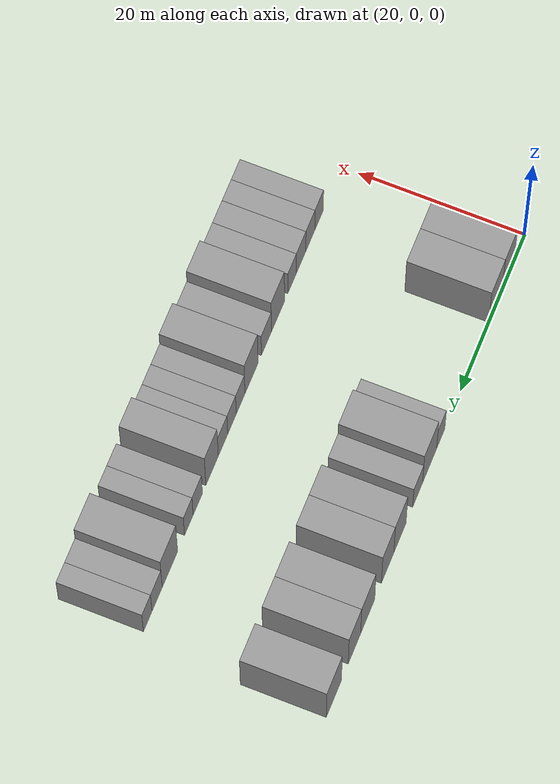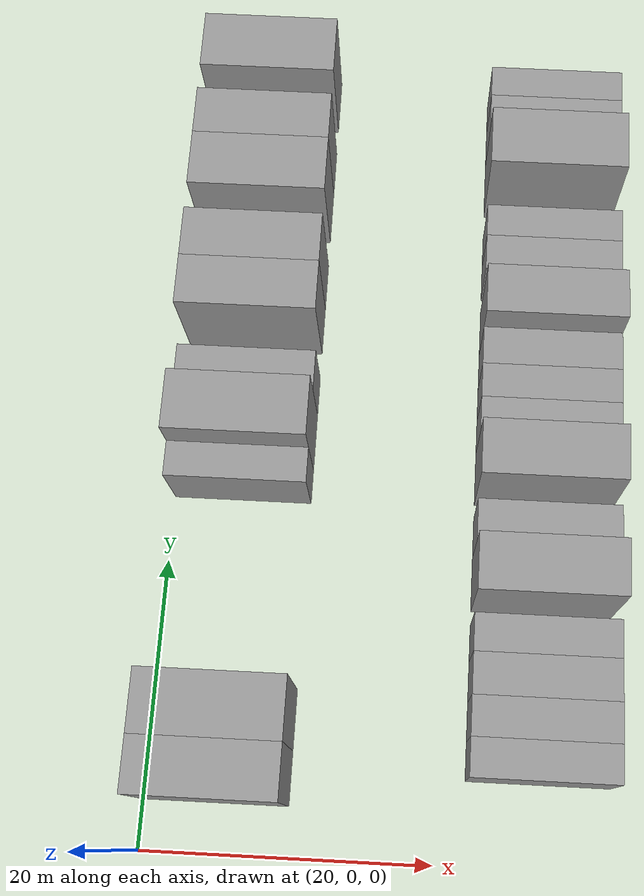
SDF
<sdf version="1.6">
 <world name="default">
  <model name="building_49">
   <static>1</static>
   <pose>25.0000 5.2194 0 0.000000 0.000000 0.000000</pose>
   <link name="link">
    <pose>0 0 4.50 0 0 0</pose>
    <collision name="collision"><geometry><box><size>10.0000 3.6980 9.0000</size></box></geometry></collision>
    <visual name="visual">
     <cast_shadows>0</cast_shadows>
     <geometry><box><size>10.0000 3.6980 9.0000</size></box></geometry>
     <material>
      <script>
       <uri>model://grey_wall/materials/scripts</uri>
       <uri>model://grey_wall/materials/textures</uri>
       <name>vrc/grey_wall</name>
      </script>
     </material>
    </visual>
   </link>
  </model>
  <model name="building_50">
   <static>1</static>
   <pose>25.0000 9.1772 0 0.000000 0.000000 0.000000</pose>
   <link name="link">
    <pose>0 0 4.50 0 0 0</pose>
    <collision name="collision"><geometry><box><size>10.0000 4.2176 9.0000</size></box></geometry></collision>
    <visual name="visual">
     <cast_shadows>0</cast_shadows>
     <geometry><box><size>10.0000 4.2176 9.0000</size></box></geometry>
     <material>
      <script>
       <uri>model://grey_wall/materials/scripts</uri>
       <uri>model://grey_wall/materials/textures</uri>
       <name>vrc/grey_wall</name>
      </script>
     </material>
    </visual>
   </link>
  </model>
  <model name="building_51">
   <static>1</static>
   <pose>25.0000 26.0716 0 0.000000 0.000000 0.000000</pose>
   <link name="link">
    <pose>0 0 3.00 0 0 0</pose>
    <collision name="collision"><geometry><box><size>10.0000 2.5238 6.0000</size></box></geometry></collision>
    <visual name="visual">
     <cast_shadows>0</cast_shadows>
     <geometry><box><size>10.0000 2.5238 6.0000</size></box></geometry>
     <material>
      <script>
       <uri>model://grey_wall/materials/scripts</uri>
       <uri>model://grey_wall/materials/textures</uri>
       <name>vrc/grey_wall</name>
      </script>
     </material>
    </visual>
   </link>
  </model>
  <model name="building_52">
   <static>1</static>
   <pose>25.0000 29.4768 0 0.000000 0.000000 0.000000</pose>
   <link name="link">
    <pose>0 0 4.50 0 0 0</pose>
    <collision name="collision"><geometry><box><size>10.0000 4.2866 9.0000</size></box></geometry></collision>
    <visual name="visual">
     <cast_shadows>0</cast_shadows>
     <geometry><box><size>10.0000 4.2866 9.0000</size></box></geometry>
     <material>
      <script>
       <uri>model://grey_wall/materials/scripts</uri>
       <uri>model://grey_wall/materials/textures</uri>
       <name>vrc/grey_wall</name>
      </script>
     </material>
    </visual>
   </link>
  </model>
  <model name="building_53">
   <static>1</static>
   <pose>25.0000 33.1085 0 0.000000 0.000000 0.000000</pose>
   <link name="link">
    <pose>0 0 3.00 0 0 0</pose>
    <collision name="collision"><geometry><box><size>10.0000 2.9769 6.0000</size></box></geometry></collision>
    <visual name="visual">
     <cast_shadows>0</cast_shadows>
     <geometry><box><size>10.0000 2.9769 6.0000</size></box></geometry>
     <material>
      <script>
       <uri>model://grey_wall/materials/scripts</uri>
       <uri>model://grey_wall/materials/textures</uri>
       <name>vrc/grey_wall</name>
      </script>
     </material>
    </visual>
   </link>
  </model>
  <model name="building_54">
   <static>1</static>
   <pose>25.0000 38.4390 0 0.000000 0.000000 0.000000</pose>
   <link name="link">
    <pose>0 0 4.50 0 0 0</pose>
    <collision name="collision"><geometry><box><size>10.0000 3.6842 9.0000</size></box></geometry></collision>
    <visual name="visual">
     <cast_shadows>0</cast_shadows>
     <geometry><box><size>10.0000 3.6842 9.0000</size></box></geometry>
     <material>
      <script>
       <uri>model://grey_wall/materials/scripts</uri>
       <uri>model://grey_wall/materials/textures</uri>
       <name>vrc/grey_wall</name>
      </script>
     </material>
    </visual>
   </link>
  </model>
  <model name="building_55">
   <static>1</static>
   <pose>25.0000 42.1352 0 0.000000 0.000000 0.000000</pose>
   <link name="link">
    <pose>0 0 4.50 0 0 0</pose>
    <collision name="collision"><geometry><box><size>10.0000 3.7081 9.0000</size></box></geometry></collision>
    <visual name="visual">
     <cast_shadows>0</cast_shadows>
     <geometry><box><size>10.0000 3.7081 9.0000</size></box></geometry>
     <material>
      <script>
       <uri>model://grey_wall/materials/scripts</uri>
       <uri>model://grey_wall/materials/textures</uri>
       <name>vrc/grey_wall</name>
      </script>
     </material>
    </visual>
   </link>
  </model>
  <model name="building_56">
   <static>1</static>
   <pose>25.0000 48.0854 0 0.000000 0.000000 0.000000</pose>
   <link name="link">
    <pose>0 0 4.50 0 0 0</pose>
    <collision name="collision"><geometry><box><size>10.0000 4.1924 9.0000</size></box></geometry></collision>
    <visual name="visual">
     <cast_shadows>0</cast_shadows>
     <geometry><box><size>10.0000 4.1924 9.0000</size></box></geometry>
     <material>
      <script>
       <uri>model://grey_wall/materials/scripts</uri>
       <uri>model://grey_wall/materials/textures</uri>
       <name>vrc/grey_wall</name>
      </script>
     </material>
    </visual>
   </link>
  </model>
  <model name="building_57">
   <static>1</static>
   <pose>25.0000 52.0209 0 0.000000 0.000000 0.000000</pose>
   <link name="link">
    <pose>0 0 4.50 0 0 0</pose>
    <collision name="collision"><geometry><box><size>10.0000 3.6785 9.0000</size></box></geometry></collision>
    <visual name="visual">
     <cast_shadows>0</cast_shadows>
     <geometry><box><size>10.0000 3.6785 9.0000</size></box></geometry>
     <material>
      <script>
       <uri>model://grey_wall/materials/scripts</uri>
       <uri>model://grey_wall/materials/textures</uri>
       <name>vrc/grey_wall</name>
      </script>
     </material>
    </visual>
   </link>
  </model>
  <model name="building_58">
   <static>1</static>
   <pose>25.0000 58.0877 0 0.000000 0.000000 0.000000</pose>
   <link name="link">
    <pose>0 0 4.50 0 0 0</pose>
    <collision name="collision"><geometry><box><size>10.0000 4.4550 9.0000</size></box></geometry></collision>
    <visual name="visual">
     <cast_shadows>0</cast_shadows>
     <geometry><box><size>10.0000 4.4550 9.0000</size></box></geometry>
     <material>
      <script>
       <uri>model://grey_wall/materials/scripts</uri>
       <uri>model://grey_wall/materials/textures</uri>
       <name>vrc/grey_wall</name>
      </script>
     </material>
    </visual>
   </link>
  </model>
  <model name="building_154">
   <static>1</static>
   <pose>47.0000 6.9437 0 0.000000 0.000000 0.000000</pose>
   <link name="link">
    <pose>0 0 3.00 0 0 0</pose>
    <collision name="collision"><geometry><box><size>10.0000 2.6031 6.0000</size></box></geometry></collision>
    <visual name="visual">
     <cast_shadows>0</cast_shadows>
     <geometry><box><size>10.0000 2.6031 6.0000</size></box></geometry>
     <material>
      <script>
       <uri>model://grey_wall/materials/scripts</uri>
       <uri>model://grey_wall/materials/textures</uri>
       <name>vrc/grey_wall</name>
      </script>
     </material>
    </visual>
   </link>
  </model>
  <model name="building_155">
   <static>1</static>
   <pose>47.0000 9.6001 0 0.000000 0.000000 0.000000</pose>
   <link name="link">
    <pose>0 0 3.00 0 0 0</pose>
    <collision name="collision"><geometry><box><size>10.0000 2.7097 6.0000</size></box></geometry></collision>
    <visual name="visual">
     <cast_shadows>0</cast_shadows>
     <geometry><box><size>10.0000 2.7097 6.0000</size></box></geometry>
     <material>
      <script>
       <uri>model://grey_wall/materials/scripts</uri>
       <uri>model://grey_wall/materials/textures</uri>
       <name>vrc/grey_wall</name>
      </script>
     </material>
    </visual>
   </link>
  </model>
  <model name="building_156">
   <static>1</static>
   <pose>47.0000 12.3736 0 0.000000 0.000000 0.000000</pose>
   <link name="link">
    <pose>0 0 3.00 0 0 0</pose>
    <collision name="collision"><geometry><box><size>10.0000 2.8373 6.0000</size></box></geometry></collision>
    <visual name="visual">
     <cast_shadows>0</cast_shadows>
     <geometry><box><size>10.0000 2.8373 6.0000</size></box></geometry>
     <material>
      <script>
       <uri>model://grey_wall/materials/scripts</uri>
       <uri>model://grey_wall/materials/textures</uri>
       <name>vrc/grey_wall</name>
      </script>
     </material>
    </visual>
   </link>
  </model>
  <model name="building_157">
   <static>1</static>
   <pose>47.0000 15.0904 0 0.000000 0.000000 0.000000</pose>
   <link name="link">
    <pose>0 0 3.00 0 0 0</pose>
    <collision name="collision"><geometry><box><size>10.0000 2.5962 6.0000</size></box></geometry></collision>
    <visual name="visual">
     <cast_shadows>0</cast_shadows>
     <geometry><box><size>10.0000 2.5962 6.0000</size></box></geometry>
     <material>
      <script>
       <uri>model://grey_wall/materials/scripts</uri>
       <uri>model://grey_wall/materials/textures</uri>
       <name>vrc/grey_wall</name>
      </script>
     </material>
    </visual>
   </link>
  </model>
  <model name="building_158">
   <static>1</static>
   <pose>47.0000 19.3451 0 0.000000 0.000000 0.000000</pose>
   <link name="link">
    <pose>0 0 4.50 0 0 0</pose>
    <collision name="collision"><geometry><box><size>10.0000 3.9133 9.0000</size></box></geometry></collision>
    <visual name="visual">
     <cast_shadows>0</cast_shadows>
     <geometry><box><size>10.0000 3.9133 9.0000</size></box></geometry>
     <material>
      <script>
       <uri>model://grey_wall/materials/scripts</uri>
       <uri>model://grey_wall/materials/textures</uri>
       <name>vrc/grey_wall</name>
      </script>
     </material>
    </visual>
   </link>
  </model>
  <model name="building_159">
   <static>1</static>
   <pose>47.0000 22.7942 0 0.000000 0.000000 0.000000</pose>
   <link name="link">
    <pose>0 0 3.00 0 0 0</pose>
    <collision name="collision"><geometry><box><size>10.0000 2.9850 6.0000</size></box></geometry></collision>
    <visual name="visual">
     <cast_shadows>0</cast_shadows>
     <geometry><box><size>10.0000 2.9850 6.0000</size></box></geometry>
     <material>
      <script>
       <uri>model://grey_wall/materials/scripts</uri>
       <uri>model://grey_wall/materials/textures</uri>
       <name>vrc/grey_wall</name>
      </script>
     </material>
    </visual>
   </link>
  </model>
  <model name="building_160">
   <static>1</static>
   <pose>47.0000 27.2381 0 0.000000 0.000000 0.000000</pose>
   <link name="link">
    <pose>0 0 4.50 0 0 0</pose>
    <collision name="collision"><geometry><box><size>10.0000 3.9028 9.0000</size></box></geometry></collision>
    <visual name="visual">
     <cast_shadows>0</cast_shadows>
     <geometry><box><size>10.0000 3.9028 9.0000</size></box></geometry>
     <material>
      <script>
       <uri>model://grey_wall/materials/scripts</uri>
       <uri>model://grey_wall/materials/textures</uri>
       <name>vrc/grey_wall</name>
      </script>
     </material>
    </visual>
   </link>
  </model>
  <model name="building_161">
   <static>1</static>
   <pose>47.0000 30.4714 0 0.000000 0.000000 0.000000</pose>
   <link name="link">
    <pose>0 0 3.00 0 0 0</pose>
    <collision name="collision"><geometry><box><size>10.0000 2.5638 6.0000</size></box></geometry></collision>
    <visual name="visual">
     <cast_shadows>0</cast_shadows>
     <geometry><box><size>10.0000 2.5638 6.0000</size></box></geometry>
     <material>
      <script>
       <uri>model://grey_wall/materials/scripts</uri>
       <uri>model://grey_wall/materials/textures</uri>
       <name>vrc/grey_wall</name>
      </script>
     </material>
    </visual>
   </link>
  </model>
  <model name="building_162">
   <static>1</static>
   <pose>47.0000 33.0130 0 0.000000 0.000000 0.000000</pose>
   <link name="link">
    <pose>0 0 3.00 0 0 0</pose>
    <collision name="collision"><geometry><box><size>10.0000 2.5193 6.0000</size></box></geometry></collision>
    <visual name="visual">
     <cast_shadows>0</cast_shadows>
     <geometry><box><size>10.0000 2.5193 6.0000</size></box></geometry>
     <material>
      <script>
       <uri>model://grey_wall/materials/scripts</uri>
       <uri>model://grey_wall/materials/textures</uri>
       <name>vrc/grey_wall</name>
      </script>
     </material>
    </visual>
   </link>
  </model>
  <model name="building_163">
   <static>1</static>
   <pose>47.0000 35.6642 0 0.000000 0.000000 0.000000</pose>
   <link name="link">
    <pose>0 0 3.00 0 0 0</pose>
    <collision name="collision"><geometry><box><size>10.0000 2.7831 6.0000</size></box></geometry></collision>
    <visual name="visual">
     <cast_shadows>0</cast_shadows>
     <geometry><box><size>10.0000 2.7831 6.0000</size></box></geometry>
     <material>
      <script>
       <uri>model://grey_wall/materials/scripts</uri>
       <uri>model://grey_wall/materials/textures</uri>
       <name>vrc/grey_wall</name>
      </script>
     </material>
    </visual>
   </link>
  </model>
  <model name="building_164">
   <static>1</static>
   <pose>47.0000 38.8594 0 0.000000 0.000000 0.000000</pose>
   <link name="link">
    <pose>0 0 4.50 0 0 0</pose>
    <collision name="collision"><geometry><box><size>10.0000 3.6073 9.0000</size></box></geometry></collision>
    <visual name="visual">
     <cast_shadows>0</cast_shadows>
     <geometry><box><size>10.0000 3.6073 9.0000</size></box></geometry>
     <material>
      <script>
       <uri>model://grey_wall/materials/scripts</uri>
       <uri>model://grey_wall/materials/textures</uri>
       <name>vrc/grey_wall</name>
      </script>
     </material>
    </visual>
   </link>
  </model>
  <model name="building_165">
   <static>1</static>
   <pose>47.0000 43.0177 0 0.000000 0.000000 0.000000</pose>
   <link name="link">
    <pose>0 0 3.00 0 0 0</pose>
    <collision name="collision"><geometry><box><size>10.0000 2.7094 6.0000</size></box></geometry></collision>
    <visual name="visual">
     <cast_shadows>0</cast_shadows>
     <geometry><box><size>10.0000 2.7094 6.0000</size></box></geometry>
     <material>
      <script>
       <uri>model://grey_wall/materials/scripts</uri>
       <uri>model://grey_wall/materials/textures</uri>
       <name>vrc/grey_wall</name>
      </script>
     </material>
    </visual>
   </link>
  </model>
  <model name="building_166">
   <static>1</static>
   <pose>47.0000 45.6133 0 0.000000 0.000000 0.000000</pose>
   <link name="link">
    <pose>0 0 3.00 0 0 0</pose>
    <collision name="collision"><geometry><box><size>10.0000 2.4818 6.0000</size></box></geometry></collision>
    <visual name="visual">
     <cast_shadows>0</cast_shadows>
     <geometry><box><size>10.0000 2.4818 6.0000</size></box></geometry>
     <material>
      <script>
       <uri>model://grey_wall/materials/scripts</uri>
       <uri>model://grey_wall/materials/textures</uri>
       <name>vrc/grey_wall</name>
      </script>
     </material>
    </visual>
   </link>
  </model>
  <model name="building_167">
   <static>1</static>
   <pose>47.0000 51.0758 0 0.000000 0.000000 0.000000</pose>
   <link name="link">
    <pose>0 0 4.50 0 0 0</pose>
    <collision name="collision"><geometry><box><size>10.0000 4.4432 9.0000</size></box></geometry></collision>
    <visual name="visual">
     <cast_shadows>0</cast_shadows>
     <geometry><box><size>10.0000 4.4432 9.0000</size></box></geometry>
     <material>
      <script>
       <uri>model://grey_wall/materials/scripts</uri>
       <uri>model://grey_wall/materials/textures</uri>
       <name>vrc/grey_wall</name>
      </script>
     </material>
    </visual>
   </link>
  </model>
  <model name="building_168">
   <static>1</static>
   <pose>47.0000 54.7626 0 0.000000 0.000000 0.000000</pose>
   <link name="link">
    <pose>0 0 3.00 0 0 0</pose>
    <collision name="collision"><geometry><box><size>10.0000 2.9303 6.0000</size></box></geometry></collision>
    <visual name="visual">
     <cast_shadows>0</cast_shadows>
     <geometry><box><size>10.0000 2.9303 6.0000</size></box></geometry>
     <material>
      <script>
       <uri>model://grey_wall/materials/scripts</uri>
       <uri>model://grey_wall/materials/textures</uri>
       <name>vrc/grey_wall</name>
      </script>
     </material>
    </visual>
   </link>
  </model>
  <model name="building_169">
   <static>1</static>
   <pose>47.0000 57.4540 0 0.000000 0.000000 0.000000</pose>
   <link name="link">
    <pose>0 0 3.00 0 0 0</pose>
    <collision name="collision"><geometry><box><size>10.0000 2.4525 6.0000</size></box></geometry></collision>
    <visual name="visual">
     <cast_shadows>0</cast_shadows>
     <geometry><box><size>10.0000 2.4525 6.0000</size></box></geometry>
     <material>
      <script>
       <uri>model://grey_wall/materials/scripts</uri>
       <uri>model://grey_wall/materials/textures</uri>
       <name>vrc/grey_wall</name>
      </script>
     </material>
    </visual>
   </link>
  </model>
 </world>
</sdf>
